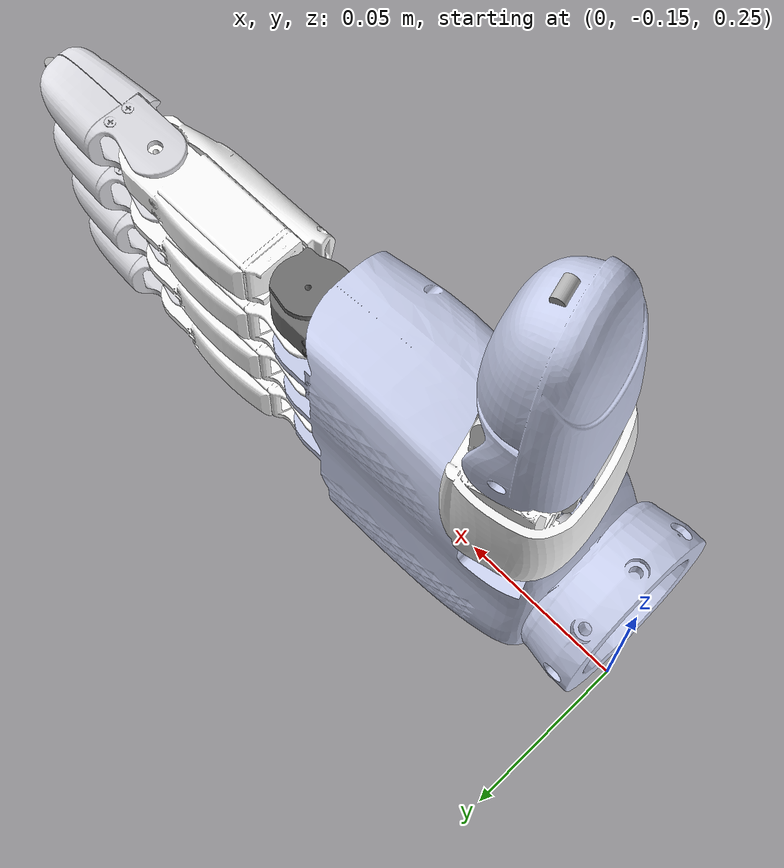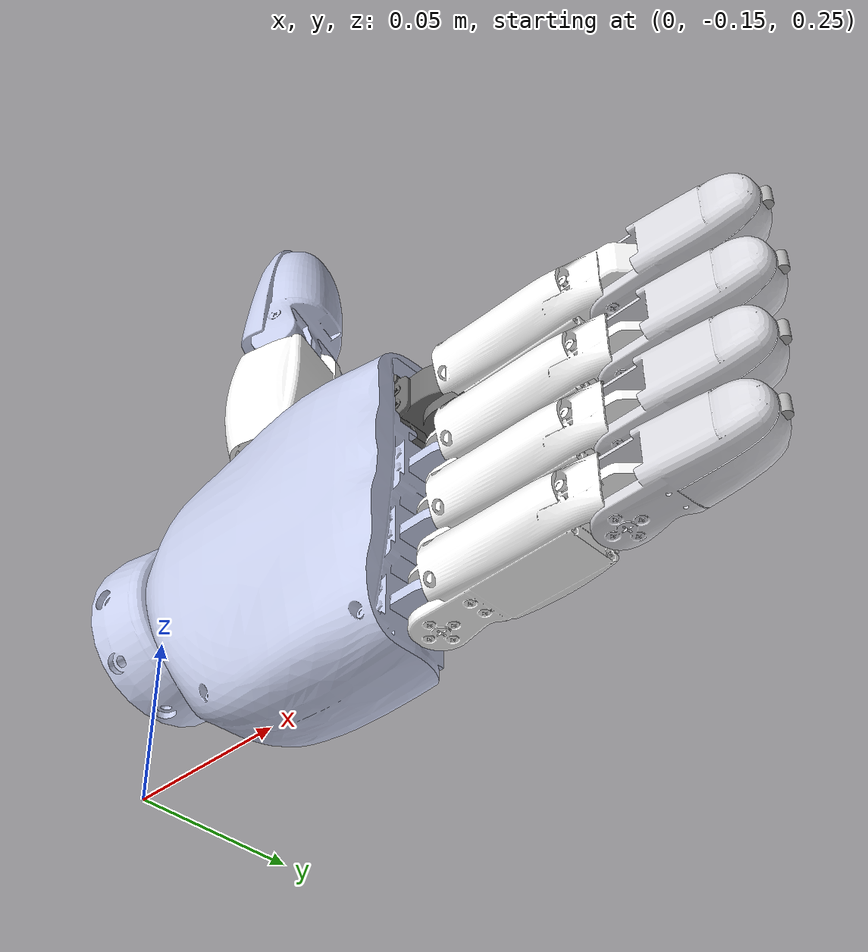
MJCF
<mujoco model="xhand_right_spec_basepd">
  <compiler angle="radian" meshdir="meshes/" />

  <default>
    <geom density="800" condim="1" contype="0" conaffinity="0" />
    <position kp="20" kv="1.5" forcelimited="true" forcerange="-100 100" inheritrange="1" />
    <joint damping="1.0" armature="0.1" frictionloss="0.0" />
    <site size="0.005" type="sphere" rgba="1 0 0 1" group="3" />
  </default>

  <asset>
    <texture type="skybox" builtin="gradient" rgb1="1.0 1.0 1.0" rgb2="1.0 1.0 1.0" width="512"
      height="3072" />
    <texture type="2d" name="right_groundplane" builtin="checker" mark="edge" rgb1="0.2 0.3 0.4"
      rgb2="0.1 0.2 0.3"
      markrgb="0.8 0.8 0.8" width="300" height="300" />
    <material name="right_groundplane" texture="right_groundplane" texuniform="true"
      texrepeat="5 5"
      reflectance="0.2" />
    <mesh name="right_hand_link" content_type="model/stl" file="right_hand_link.STL" />
    <mesh name="right_hand_thumb_bend_link" content_type="model/stl"
      file="right_hand_thumb_bend_link.STL" />
    <mesh name="right_hand_thumb_rota_link1" content_type="model/stl"
      file="right_hand_thumb_rota_link1.STL" />
    <mesh name="right_hand_thumb_rota_link2" content_type="model/stl"
      file="right_hand_thumb_rota_link2.STL" />
    <mesh name="right_hand_index_bend_link" content_type="model/stl"
      file="right_hand_index_bend_link.STL" />
    <mesh name="right_hand_index_rota_link1" content_type="model/stl"
      file="right_hand_index_rota_link1.STL" />
    <mesh name="right_hand_index_rota_link2" content_type="model/stl"
      file="right_hand_index_rota_link2.STL" />
    <mesh name="right_hand_mid_link1" content_type="model/stl" file="right_hand_mid_link1.STL" />
    <mesh name="right_hand_mid_link2" content_type="model/stl" file="right_hand_mid_link2.STL" />
    <mesh name="right_hand_ring_link1" content_type="model/stl" file="right_hand_ring_link1.STL" />
    <mesh name="right_hand_ring_link2" content_type="model/stl" file="right_hand_ring_link2.STL" />
    <mesh name="right_hand_pinky_link1" content_type="model/stl" file="right_hand_pinky_link1.STL" />
    <mesh name="right_hand_pinky_link2" content_type="model/stl" file="right_hand_pinky_link2.STL" />
    <mesh name="right_hand_thumb_rota_tip" content_type="model/stl" file="right_hand_thumb_rota_tip.STL" />
    <mesh name="right_hand_index_rota_tip" content_type="model/stl" file="right_hand_index_rota_tip.STL" />
    <mesh name="right_hand_mid_tip" content_type="model/stl" file="right_hand_mid_tip.STL" />
    <mesh name="right_hand_ring_tip" content_type="model/stl" file="right_hand_ring_tip.STL" />
    <mesh name="right_hand_pinky_tip" content_type="model/stl" file="right_hand_pinky_tip.STL" />
  </asset>

  <worldbody>
    <body gravcomp="0.8" name="R_forearm_pos_x_link" pos="0 -0.15 0.3" quat="0.707107 0 -0.707107 0">
      <camera name="right_track" pos="-0.868 -0.348 -0.175"
        xyaxes="-0.037 0.999 -0.000 -0.011 -0.000 1.000" />
      <inertial pos="0 0 0" mass="0.1" diaginertia="0.01 0.01 0.01" />
      <joint name="R_forearm_pos_x_joint" pos="0 0 0" axis="1 0 0" type="slide" range="-5 5" />
      <body gravcomp="0.8" name="R_forearm_pos_y_link">
        <inertial pos="0 0 0" mass="0.1" diaginertia="0.01 0.01 0.01" />
        <joint name="R_forearm_pos_y_joint" pos="0 0 0" axis="0 1 0" type="slide" range="-5 5" />
        <body gravcomp="0.8" name="R_forearm_pos_z_link">
          <inertial pos="0 0 0" mass="0.1" diaginertia="0.01 0.01 0.01" />
          <joint name="R_forearm_pos_z_joint" pos="0 0 0" axis="0 0 1" type="slide" range="-5 5" />
          <body gravcomp="0.8" name="R_forearm_rot_z_link">
            <inertial pos="0 0 0" mass="0.1" diaginertia="0.01 0.01 0.01" />
            <joint name="R_forearm_rot_z_joint" pos="0 0 0" axis="0 0 1" range="-6.2 6.2" />
            <body gravcomp="0.8" name="R_forearm_rot_x_link">
              <inertial pos="0 0 0" mass="0.1" diaginertia="0.01 0.01 0.01" />
              <joint name="R_forearm_rot_x_joint" pos="0 0 0" axis="1 0 0" range="-6.2 6.2" />
              <body gravcomp="0.8" name="R_forearm_rot_y_link">
                <inertial pos="-0.003668351 0.01003513 -0.05826952"
                  quat="-0.08984294 0.7007815 0.7024913 -0.08567105" mass="0.5385151"
                  diaginertia="0.000641873 0.000477386 0.00026232" />
                <joint name="R_forearm_rot_y_joint" pos="0 0 0" axis="0 -1 0" range="-6.2 6.2" />
                <geom name="right_hand_link_visual" type="mesh" contype="0" conaffinity="0"
                  group="1" density="0" rgba="0.792157 0.819608 0.933333 1" mesh="right_hand_link" />
                <geom name="collision_hand_right_palm_0" type="mesh"
                  mesh="right_hand_link"
                  rgba="0.792157 0.819608 0.933333 1" />
                <site name="right_palm" pos="0 0 0" type="box" size="0.01 0.02 0.03" quat="1 1 1 -1" />
                <body gravcomp="0.8" name="right_hand_thumb_bend_link" pos="0.0228 0.0095 -0.0305">
                  <inertial pos="0.01443588 -0.001165345 -5.406652e-05"
                    quat="-0.6795136 0.02182089 0.7321306 -0.04207065" mass="0.01151453"
                    diaginertia="1.57533e-06 1.55076e-06 6.13913e-07" />
                  <joint name="right_hand_thumb_bend_joint" pos="0 0 0" axis="0 0 1" range="0 1.5708" />
                  <geom name="right_thumb_bend_visual" type="mesh" contype="0" conaffinity="0"
                    group="1" density="0" rgba="0.890196 0.890196 0.913725 1"
                    mesh="right_hand_thumb_bend_link" />
                  <geom name="collision_hand_right_thumb_2" type="mesh"
                    mesh="right_hand_thumb_bend_link"
                    rgba="0.890196 0.890196 0.913725 1" />
                  <body gravcomp="0.8" name="right_hand_thumb_rota_link1" pos="0.028599 0.0083177 0.00178"
                    quat="0.99124 0.130499 0.00265603 0.0201745">
                    <inertial pos="0.02876815 -0.0003617651 -0.001339297"
                      quat="-0.6773014 -0.2178144 0.7021874 -0.02743187" mass="0.1322853"
                      diaginertia="4.41087e-05 3.90795e-05 1.39818e-05" />
                    <joint name="right_hand_thumb_rota_joint1" pos="0 0 0" axis="0 1 0"
                      range="-1.05 1.5708" />
                    <geom name="right_thumb_rota1_visual" type="mesh" contype="0" conaffinity="0"
                      group="1" density="0" rgba="1 1 1 1" mesh="right_hand_thumb_rota_link1" />
                    <geom name="collision_hand_right_thumb_1" type="mesh"
                      mesh="right_hand_thumb_rota_link1"
                      rgba="1 1 1 1" />
                    <body gravcomp="0.8" name="right_hand_thumb_rota_link2" pos="0.0553 0 0">
                      <inertial pos="0.022534 -0.0008816043 -0.0006145506"
                        quat="0.09331825 -0.6893428 -0.09172713 0.7125197" mass="0.03516871"
                        diaginertia="9.05739e-06 7.69855e-06 3.49405e-06" />
                      <joint name="right_hand_thumb_rota_joint2" pos="0 0 0" axis="0 1 0"
                        range="0 1.5708" />
                      <geom name="right_thumb_rota2_visual" type="mesh" contype="0" conaffinity="0"
                        group="1" density="0" rgba="0.792157 0.819608 0.933333 1"
                        mesh="right_hand_thumb_rota_link2" />
                      <geom name="collision_hand_right_thumb_0" type="mesh"
                        mesh="right_hand_thumb_rota_link2"
                        rgba="0.792157 0.819608 0.933333 1" />
                      <geom name="collision_hand_right_thumb_tip" type="mesh"
                        pos="0.0504025 0 0"
                        mesh="right_hand_thumb_rota_tip"
                        rgba="0.698039 0.698039 0.698039 1" />
                      <site name="right_thumb_tip" pos="0.0504 0 0" />
                      <site name="track_hand_right_thumb_tip" pos="0.04188 -0.00004 -0.00746" />
                      <site name="contact_right_thumb_tip" type="box" group="4" rgba="0 0.8 1 1" size="0.015515 0.01505 0.00711" pos="0.035355 0 -0.0042" />
                      <site name="trace_hand_right_thumb_tip" pos="0.04 0 -0.012" />
                    </body>
                  </body>
                </body>
                <body gravcomp="0.8" name="right_hand_index_bend_link" pos="0.0265 0.0065 -0.0899">
                  <inertial pos="0.0001189976 -0.0007158512 -0.0111903"
                    quat="0.00083178 -0.004035523 0.004995498 0.999979" mass="0.068721"
                    diaginertia="1.70709e-05 1.64313e-05 3.42781e-06" />
                  <joint name="right_hand_index_bend_joint" pos="0 0 0" axis="0 1 0"
                    range="-0.2967 0.0873" />
                  <geom name="right_index_bend_visual" type="mesh" contype="0" conaffinity="0"
                    group="1" density="0" rgba="0.439216 0.439216 0.439216 1"
                    mesh="right_hand_index_bend_link" />
                  <geom name="collision_hand_right_index_2" type="mesh"
                    mesh="right_hand_index_bend_link"
                    rgba="0.439216 0.439216 0.439216 1" />
                  <body gravcomp="0.8" name="right_hand_index_rota_link1" pos="0 0 -0.0178">
                    <inertial pos="0.0001330081 0.0006329305 -0.03558687"
                      quat="-0.006912748 0.9999205 0.003662729 0.009890605" mass="0.06298297"
                      diaginertia="1.73856e-05 1.68626e-05 3.19183e-06" />
                    <joint name="right_hand_index_joint1" pos="0 0 0" axis="1 0 0" range="0 1.92" />
                    <geom name="right_index_rota1_visual" type="mesh" contype="0" conaffinity="0"
                      group="1" density="0" rgba="1 1 1 1" mesh="right_hand_index_rota_link1" />
                    <geom name="collision_hand_right_index_1" type="mesh"
                      mesh="right_hand_index_rota_link1"
                      rgba="1 1 1 1" />
                    <body gravcomp="0.8" name="right_hand_index_rota_link2" pos="0 0 -0.0558">
                      <inertial pos="-0.0002483617 0.001199052 -0.02137899"
                        quat="-0.6787521 -0.03469798 0.008190274 0.7335016" mass="0.01582395"
                        diaginertia="2.8328e-06 2.77713e-06 8.40076e-07" />
                      <joint name="right_hand_index_joint2" pos="0 0 0" axis="1 0 0" range="0 1.92" />
                      <geom name="right_index_rota2_visual" type="mesh" contype="0" conaffinity="0"
                        group="1" density="0" rgba="0.866667 0.866667 0.890196 1"
                        mesh="right_hand_index_rota_link2" />
                      <geom name="collision_hand_right_index_0" type="mesh"
                        mesh="right_hand_index_rota_link2"
                        rgba="0.866667 0.866667 0.890196 1" />
                      <geom name="collision_hand_right_index_tip" type="mesh"
                        pos="0 0 -0.0425"
                        mesh="right_hand_index_rota_tip"
                        rgba="0.698039 0.698039 0.698039 1" />
                      <site name="right_index_tip" pos="0 0 -0.0425" />
                      <site name="track_hand_right_index_tip" pos="0.00000 0.00802 -0.03648" />
                      <site name="contact_right_index_tip" type="box" group="4" rgba="0 0.8 1 1" size="0.00832 0.00607 0.011995" pos="0 0.00487 -0.030085" />
                      <site name="trace_hand_right_index_tip" pos="0 0.004 -0.027" />
                    </body>
                  </body>
                </body>
                <body gravcomp="0.8" name="right_hand_mid_link1" pos="0.004 0.0065 -0.1082">
                  <inertial pos="3.580491e-05 0.0005304176 -0.03327847"
                    quat="-0.03171207 0.9993015 0.01682587 0.01038419" mass="0.06298297"
                    diaginertia="1.73861e-05 1.6865e-05 3.18891e-06" />
                  <joint name="right_hand_mid_joint1" pos="0 0 0" axis="1 0 0" range="0 1.92" />
                  <geom name="right_middle_link1_visual" type="mesh" contype="0" conaffinity="0"
                    group="1" density="0" rgba="1 1 1 1" mesh="right_hand_mid_link1" />
                  <geom name="collision_hand_right_middle_1" type="mesh"
                    mesh="right_hand_mid_link1"
                    rgba="1 1 1 1" />
                  <body gravcomp="0.8" name="right_hand_mid_link2" pos="0 0 -0.0558">
                    <inertial pos="-0.0002483617 0.001199052 -0.02137899"
                      quat="-0.01245416 0.7159392 0.6959296 0.05438782" mass="0.01582395"
                      diaginertia="2.88792e-06 2.83727e-06 8.44807e-07" />
                    <joint name="right_hand_mid_joint2" pos="0 0 0" axis="1 0 0" range="0 1.94" />
                    <geom name="right_middle_link2_visual" type="mesh" contype="0" conaffinity="0"
                      group="1" density="0" rgba="0.866667 0.866667 0.890196 1"
                      mesh="right_hand_mid_link2" />
                    <geom name="collision_hand_right_middle_0" type="mesh"
                      mesh="right_hand_mid_link2"
                      rgba="0.866667 0.866667 0.890196 1" />
                    <geom name="collision_hand_right_middle_tip" type="mesh"
                      pos="0 0 -0.042107"
                      mesh="right_hand_mid_tip"
                      rgba="0.698039 0.698039 0.698039 1" />
                    <site name="right_middle_tip" pos="0 0 -0.042107" />
                    <site name="track_hand_right_middle_tip" pos="0.00000 0.00802 -0.03648" />
                    <site name="contact_right_middle_tip" type="box" group="4" rgba="0 0.8 1 1" size="0.00832 0.00607 0.011995" pos="0 0.00487 -0.030085" />
                    <site name="trace_hand_right_middle_tip" pos="0 0.004 -0.027" />
                  </body>
                </body>
                <body gravcomp="0.8" name="right_hand_ring_link1" pos="-0.016 0.0065 -0.1052">
                  <inertial pos="3.580491e-05 0.0005304176 -0.03327847"
                    quat="-0.03171207 0.9993015 0.01682587 0.01038419" mass="0.06298297"
                    diaginertia="1.73861e-05 1.6865e-05 3.18891e-06" />
                  <joint name="right_hand_ring_joint1" pos="0 0 0" axis="1 0 0" range="0 1.92" />
                  <geom name="right_ring_link1_visual" type="mesh" contype="0" conaffinity="0"
                    group="1" density="0" rgba="1 1 1 1" mesh="right_hand_ring_link1" />
                  <geom name="collision_hand_right_ring_1" type="mesh"
                    mesh="right_hand_ring_link1"
                    rgba="1 1 1 1" />
                  <body gravcomp="0.8" name="right_hand_ring_link2" pos="0 0 -0.0558">
                    <inertial pos="-0.0002483616 0.001199052 -0.02137899"
                      quat="-0.01245416 0.7159392 0.6959296 0.05438782" mass="0.01582395"
                      diaginertia="2.88792e-06 2.83727e-06 8.44807e-07" />
                    <joint name="right_hand_ring_joint2" pos="0 0 0" axis="1 0 0" range="0 1.92" />
                    <geom name="right_ring_link2_visual" type="mesh" contype="0" conaffinity="0"
                      group="1" density="0" rgba="0.866667 0.866667 0.890196 1"
                      mesh="right_hand_ring_link2" />
                    <geom name="collision_hand_right_ring_0" type="mesh"
                      mesh="right_hand_ring_link2"
                      rgba="0.866667 0.866667 0.890196 1" />
                    <geom name="collision_hand_right_ring_tip" type="mesh"
                      pos="0 0 -0.0425"
                      mesh="right_hand_ring_tip"
                      rgba="0.698039 0.698039 0.698039 1" />
                    <site name="right_ring_tip" pos="0 0 -0.0425" />
                    <site name="track_hand_right_ring_tip" pos="0.00000 0.00802 -0.03648" />
                    <site name="contact_right_ring_tip" type="box" group="4" rgba="0 0.8 1 1" size="0.00832 0.00607 0.011995" pos="0 0.00487 -0.030085" />
                    <site name="trace_hand_right_ring_tip" pos="0 0.004 -0.027" />
                  </body>
                </body>
                <body gravcomp="0.8" name="right_hand_pinky_link1" pos="-0.036 0.0065 -0.1022">
                  <inertial pos="3.580491e-05 0.0005304176 -0.03327847"
                    quat="-0.03171207 0.9993015 0.01682587 0.01038419" mass="0.06298297"
                    diaginertia="1.73861e-05 1.6865e-05 3.18891e-06" />
                  <joint name="right_hand_pinky_joint1" pos="0 0 0" axis="1 0 0" range="0 1.92" />
                  <geom name="right_pinky_link1_visual" type="mesh" contype="0" conaffinity="0"
                    group="1" density="0" rgba="1 1 1 1" mesh="right_hand_pinky_link1" />
                  <geom name="collision_hand_right_pinky_1" type="mesh"
                    mesh="right_hand_pinky_link1"
                    rgba="1 1 1 1" />
                  <body gravcomp="0.8" name="right_hand_pinky_link2" pos="0 0 -0.0558">
                    <inertial pos="-0.0002483617 0.001199052 -0.02137899"
                      quat="-0.01245416 0.7159392 0.6959296 0.05438782" mass="0.01582395"
                      diaginertia="2.88792e-06 2.83727e-06 8.44807e-07" />
                    <joint name="right_hand_pinky_joint2" pos="0 0 0" axis="1 0 0" range="0 1.92" />
                    <geom name="right_pinky_link2_visual" type="mesh" contype="0" conaffinity="0"
                      group="1" density="0" rgba="0.866667 0.866667 0.890196 1"
                      mesh="right_hand_pinky_link2" />
                    <geom name="collision_hand_right_pinky_0" type="mesh"
                      mesh="right_hand_pinky_link2"
                      rgba="0.866667 0.866667 0.890196 1" />
                    <geom name="collision_hand_right_pinky_tip" type="mesh"
                      pos="0 0 -0.0425"
                      mesh="right_hand_pinky_tip"
                      rgba="0.698039 0.698039 0.698039 1" />
                    <site name="right_pinky_tip" pos="0 0 -0.0425" />
                    <site name="track_hand_right_pinky_tip" pos="0.00000 0.00802 -0.03648" />
                    <site name="contact_right_pinky_tip" type="box" group="4" rgba="0 0.8 1 1" size="0.00832 0.00607 0.011995" pos="0 0.00487 -0.030085" />
                    <site name="trace_hand_right_pinky_tip" pos="0 0.004 -0.027" />
                  </body>
                </body>
              </body>
            </body>
          </body>
        </body>
      </body>
    </body>
  </worldbody>

  <actuator>
    <!-- Wrist translation (DexMachina forearm t[xyz]): kp=350 kv=15, fr=+-100 inherited -->
    <position name="R_forearm_pos_x_position" joint="R_forearm_pos_x_joint" kp="350" kv="15" />
    <position name="R_forearm_pos_y_position" joint="R_forearm_pos_y_joint" kp="350" kv="15" />
    <position name="R_forearm_pos_z_position" joint="R_forearm_pos_z_joint" kp="350" kv="15" />
    <!-- Wrist rotation (DexMachina forearm roll/pitch/yaw): kp=60 kv=3, fr=+-100 inherited -->
    <position name="R_forearm_rot_z_position" joint="R_forearm_rot_z_joint" kp="60" kv="3" />
    <position name="R_forearm_rot_x_position" joint="R_forearm_rot_x_joint" kp="60" kv="3" />
    <position name="R_forearm_rot_y_position" joint="R_forearm_rot_y_joint" kp="60" kv="3" />

    <!-- Thumb joints -->
    <position name="right_thumb_bend_position" joint="right_hand_thumb_bend_joint" />
    <position name="right_thumb_rota1_position" joint="right_hand_thumb_rota_joint1" />
    <position name="right_thumb_rota2_position" joint="right_hand_thumb_rota_joint2" />

    <!-- Index joints -->
    <position name="right_index_bend_position" joint="right_hand_index_bend_joint" />
    <position name="right_index_joint1_position" joint="right_hand_index_joint1" />
    <position name="right_index_joint2_position" joint="right_hand_index_joint2" />

    <!-- Middle joints -->
    <position name="right_middle_joint1_position" joint="right_hand_mid_joint1" />
    <position name="right_middle_joint2_position" joint="right_hand_mid_joint2" />

    <!-- Ring joints -->
    <position name="right_ring_joint1_position" joint="right_hand_ring_joint1" />
    <position name="right_ring_joint2_position" joint="right_hand_ring_joint2" />

    <!-- Pinky joints -->
    <position name="right_pinky_joint1_position" joint="right_hand_pinky_joint1" />
    <position name="right_pinky_joint2_position" joint="right_hand_pinky_joint2" />
  </actuator>
</mujoco>
